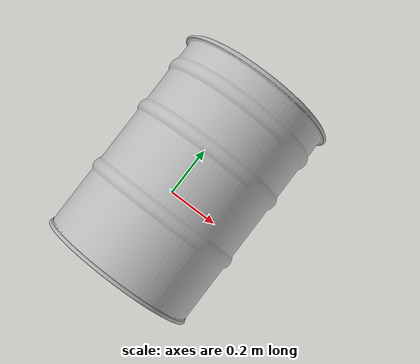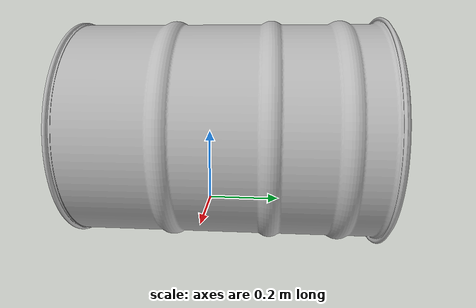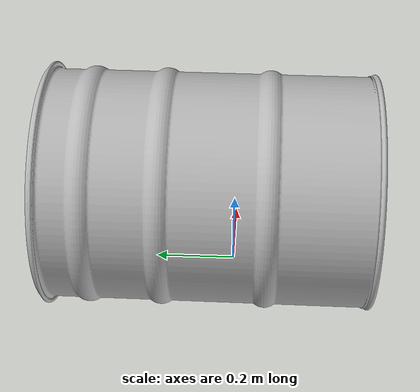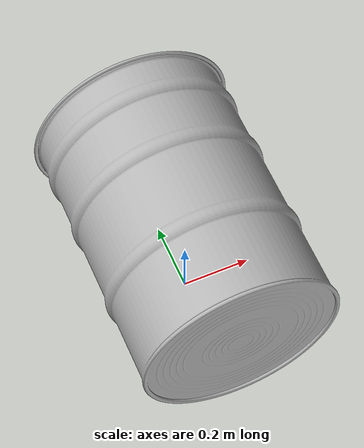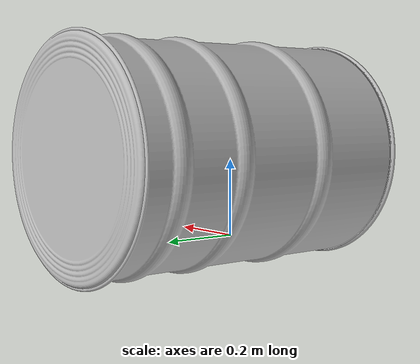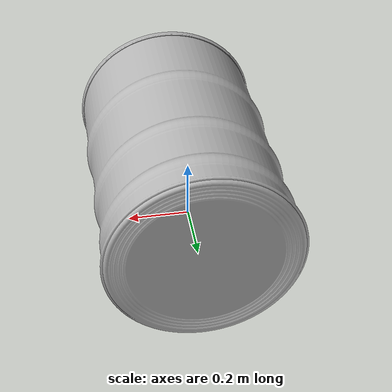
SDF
<?xml version="1.0" ?>
<sdf version="1.4">
  <model name="barrel_50">
    <link name="link">
	<!-- Original model did not have inertia matrix I copied the matrix from the beer -->
      <inertial>
        <mass>0.390</mass>
        <inertia>
          <ixx>0.00058</ixx>
          <ixy>0</ixy>
          <ixz>0</ixz>
          <iyy>0.00058</iyy>
          <iyz>0</iyz>
          <izz>0.00019</izz>
        </inertia>
      </inertial>
      <collision name="collision">
        <geometry>
          <cylinder>
            <radius>0.098</radius>
            <length>0.035</length>
          </cylinder>
        </geometry>
      </collision>
      <visual name="visual">
        <geometry>
          <mesh>
            <uri>model://barrel_50/meshes/barrel_50.stl</uri>
            <scale> 0.01 0.01 0.01 </scale>
          </mesh>
        </geometry>
      </visual>
    </link>
  </model>
</sdf>
